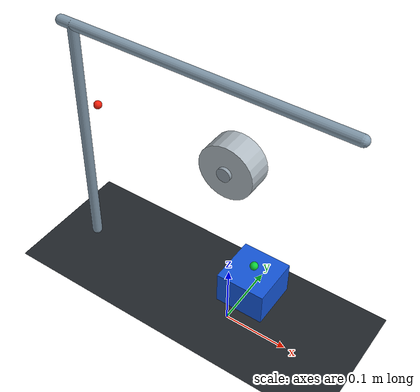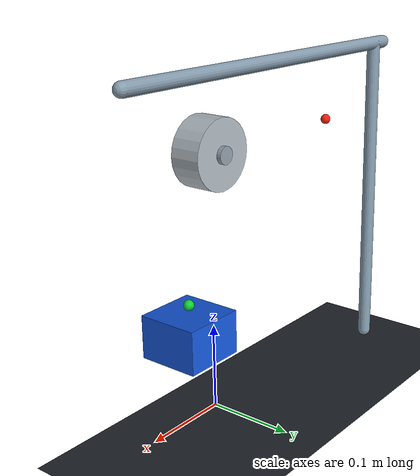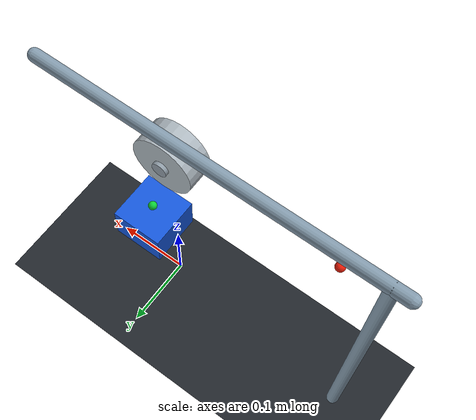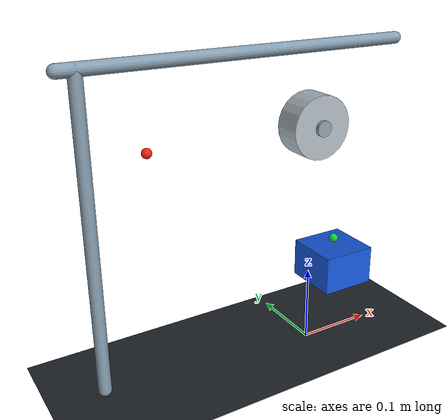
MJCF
<mujoco model="cable_demo_surface_single_fixed_pulley">
  <compiler autolimits="true" angle="radian" />
  <size nuser_site="1" />
  <option timestep="0.001" gravity="0 0 -9.81" integrator="implicitfast" />

  <extension>
    <plugin plugin="mujoco.cable.unilateral">
      <instance name="surface_pulley_cable">
        <config key="stiffness" value="1500" />
        <config key="damping" value="25" />
        <config key="slack" value="0.0001" />
        <config key="home_length" value="auto_initial" />
        <config key="pretension_offset" value="0.00135" />
        <config key="max_tension" value="40" />
        <config key="ctrl_mode" value="target_contraction" />
        <config key="route_mode" value="surface" />
        <config key="route_tendon" value="surface_pulley_seed" />
        <config key="wrap_geoms" value="fixed_pulley_wrap" />
        <config key="site_role_user_index" value="0" />
        <config key="visual_width" value="2" />
      </instance>
    </plugin>
  </extension>

  <asset>
    <material name="mat_frame" rgba="0.52 0.61 0.68 1" />
    <material name="mat_pulley" rgba="0.68 0.72 0.75 1" />
    <material name="mat_payload" rgba="0.08 0.34 0.86 1" />
  </asset>

  <default>
    <geom friction="0.8 0.08 0.02" />
    <site size="0.004" />
    <default class="route_hint">
      <site size="0.0001" rgba="1 0.8 0 0" user="2" />
    </default>
  </default>

  <worldbody>
    <light name="key" pos="-0.25 -0.75 0.65" dir="0.2 0.8 -0.7" />
    <camera name="overview" pos="0 -0.68 0.20" xyaxes="1 0 0 0 0 1" />

    <geom name="floor" type="plane" pos="0 0 -0.01" size="0.55 0.35 0.01"
          rgba="0.13 0.15 0.17 1" />
    <geom name="left_post" type="capsule" fromto="-0.28 0.03 0 -0.28 0.03 0.39"
          size="0.008" material="mat_frame" contype="0" conaffinity="0" />
    <geom name="top_beam" type="capsule" fromto="-0.30 0.03 0.39 0.15 0.03 0.39"
          size="0.008" material="mat_frame" contype="0" conaffinity="0" />

    <site name="cable_fixed_end" pos="-0.22 0 0.30" user="1"
          size="0.006" rgba="0.95 0.12 0.04 1" />

    <body name="fixed_pulley" pos="0 0 0.30">
      <geom name="fixed_pulley_wrap" type="cylinder"
            euler="1.57079632679 0 0" size="0.040 0.018"
            material="mat_pulley" contype="0" conaffinity="0" />
      <geom name="pulley_hub" type="cylinder"
            euler="1.57079632679 0 0" size="0.010 0.023"
            rgba="0.56 0.61 0.65 1" contype="0" conaffinity="0" />
      <geom name="pulley_spoke" type="capsule" fromto="0 0 0 0.031 0 0"
            size="0.0025" rgba="0.82 0.84 0.86 1"
            contype="0" conaffinity="0" />
    </body>

    <!-- This site selects the upper route only during initialization. -->
    <site name="pulley_upper_hint" class="route_hint" pos="0 0 0.345" />

    <body name="free_payload" pos="0.040 0 0.105">
      <freejoint name="payload_free" />
      <geom name="payload" type="box" size="0.036 0.036 0.025"
            mass="0.20" material="mat_payload" />
      <geom name="payload_hook_visual" type="sphere" pos="0 0 0.034"
            size="0.006" rgba="0.05 0.82 0.22 1"
            contype="0" conaffinity="0" />
      <site name="payload_cable_end" pos="0 0 0.034" user="1"
            size="0.005" rgba="0.05 0.82 0.22 1" />
    </body>
  </worldbody>

  <tendon>
    <!-- The seed records endpoint/hint order but is not the runtime force path. -->
    <spatial name="surface_pulley_seed" limited="false" width="0.000000001"
             rgba="1.0 0.22 0.03 1">
      <site site="cable_fixed_end" />
      <site site="pulley_upper_hint" />
      <site site="payload_cable_end" />
    </spatial>
  </tendon>

  <actuator>
    <plugin name="cable_contraction" tendon="surface_pulley_seed" gear="0"
            instance="surface_pulley_cable" ctrllimited="true"
            ctrlrange="-0.015 0.090" />
  </actuator>

  <sensor>
    <plugin name="surface_pulley_state" instance="surface_pulley_cable" />
    <actuatorfrc name="reported_cable_force" actuator="cable_contraction" />
    <framepos name="payload_position" objtype="body" objname="free_payload" />
    <framelinvel name="payload_velocity" objtype="body" objname="free_payload" />
  </sensor>
</mujoco>
